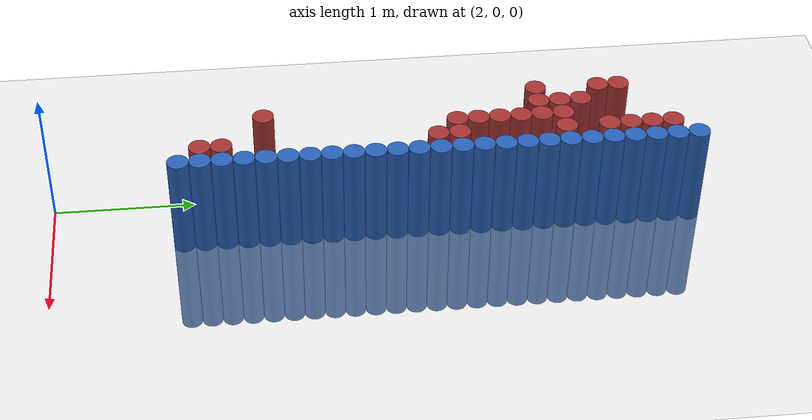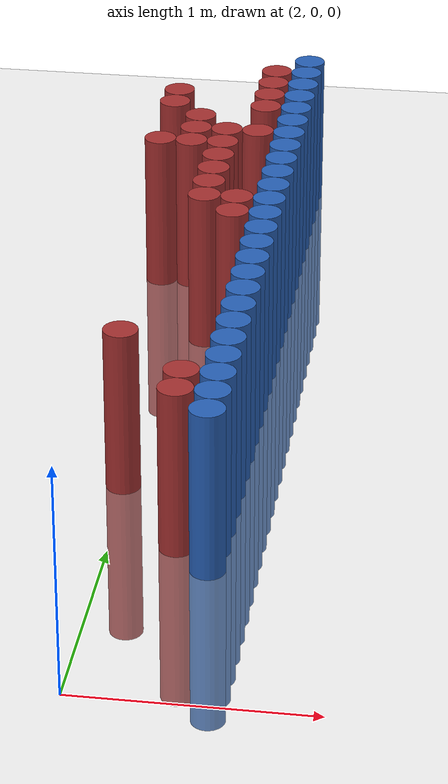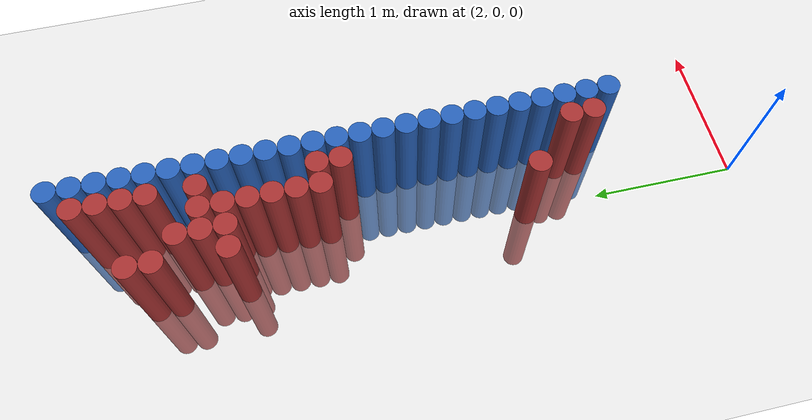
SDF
<sdf version="1.6">
 <world name="default">
  <model name="ground_plane">
   <static>1</static>
   <link name="link">
    <collision name="collision">
     <geometry><plane><normal>0 0 1</normal><size>100 100</size></plane></geometry>
     <surface><friction><ode><mu>100</mu><mu2>50</mu2></ode></friction></surface>
    </collision>
    <visual name="visual">
     <cast_shadows>0</cast_shadows>
     <geometry><plane><normal>0 0 1</normal><size>100 100</size></plane></geometry>
     <material>
      <script><uri>file://media/materials/scripts/gazebo.material</uri><name>Gazebo/Grey</name></script>
     </material>
    </visual>
   </link>
  </model>
  <model name="unit_cylinder_222">
   <static>1</static>
   <pose>1.825000 3.475000 0.000000 0.000000 0.000000 0.000000</pose>
   <link name="link">
    <inertial>
     <mass>1</mass>
     <inertia><ixx>0.145833</ixx><ixy>0</ixy><ixz>0</ixz><iyy>0.145833</iyy><iyz>0</iyz><izz>0.125</izz></inertia>
    </inertial>
    <collision name="collision">
     <geometry><cylinder><radius>0.075000</radius><length>1.5</length></cylinder></geometry>
    </collision>
    <visual name="visual">
     <geometry><cylinder><radius>0.075000</radius><length>1.5</length></cylinder></geometry>
     <material>
      <ambient>0.648000 0.192000 0.192000 1</ambient>
      <diffuse>0.648000 0.192000 0.192000 1</diffuse>
     </material>
     <material>
      <script><name>Gazebo/Grey</name><uri>file://media/materials/scripts/gazebo.material</uri></script>
     </material>
    </visual>
   </link>
  </model>
  <model name="unit_cylinder_223">
   <static>1</static>
   <pose>1.825000 3.925000 0.000000 0.000000 0.000000 0.000000</pose>
   <link name="link">
    <inertial>
     <mass>1</mass>
     <inertia><ixx>0.145833</ixx><ixy>0</ixy><ixz>0</ixz><iyy>0.145833</iyy><iyz>0</iyz><izz>0.125</izz></inertia>
    </inertial>
    <collision name="collision">
     <geometry><cylinder><radius>0.075000</radius><length>1.5</length></cylinder></geometry>
    </collision>
    <visual name="visual">
     <geometry><cylinder><radius>0.075000</radius><length>1.5</length></cylinder></geometry>
     <material>
      <ambient>0.648000 0.192000 0.192000 1</ambient>
      <diffuse>0.648000 0.192000 0.192000 1</diffuse>
     </material>
     <material>
      <script><name>Gazebo/Grey</name><uri>file://media/materials/scripts/gazebo.material</uri></script>
     </material>
    </visual>
   </link>
  </model>
  <model name="unit_cylinder_224">
   <static>1</static>
   <pose>1.825000 4.075000 0.000000 0.000000 0.000000 0.000000</pose>
   <link name="link">
    <inertial>
     <mass>1</mass>
     <inertia><ixx>0.145833</ixx><ixy>0</ixy><ixz>0</ixz><iyy>0.145833</iyy><iyz>0</iyz><izz>0.125</izz></inertia>
    </inertial>
    <collision name="collision">
     <geometry><cylinder><radius>0.075000</radius><length>1.5</length></cylinder></geometry>
    </collision>
    <visual name="visual">
     <geometry><cylinder><radius>0.075000</radius><length>1.5</length></cylinder></geometry>
     <material>
      <ambient>0.648000 0.192000 0.192000 1</ambient>
      <diffuse>0.648000 0.192000 0.192000 1</diffuse>
     </material>
     <material>
      <script><name>Gazebo/Grey</name><uri>file://media/materials/scripts/gazebo.material</uri></script>
     </material>
    </visual>
   </link>
  </model>
  <model name="unit_cylinder_225">
   <static>1</static>
   <pose>1.975000 1.525000 0.000000 0.000000 0.000000 0.000000</pose>
   <link name="link">
    <inertial>
     <mass>1</mass>
     <inertia><ixx>0.145833</ixx><ixy>0</ixy><ixz>0</ixz><iyy>0.145833</iyy><iyz>0</iyz><izz>0.125</izz></inertia>
    </inertial>
    <collision name="collision">
     <geometry><cylinder><radius>0.075000</radius><length>1.5</length></cylinder></geometry>
    </collision>
    <visual name="visual">
     <geometry><cylinder><radius>0.075000</radius><length>1.5</length></cylinder></geometry>
     <material>
      <ambient>0.648000 0.192000 0.192000 1</ambient>
      <diffuse>0.648000 0.192000 0.192000 1</diffuse>
     </material>
     <material>
      <script><name>Gazebo/Grey</name><uri>file://media/materials/scripts/gazebo.material</uri></script>
     </material>
    </visual>
   </link>
  </model>
  <model name="unit_cylinder_226">
   <static>1</static>
   <pose>1.975000 3.475000 0.000000 0.000000 0.000000 0.000000</pose>
   <link name="link">
    <inertial>
     <mass>1</mass>
     <inertia><ixx>0.145833</ixx><ixy>0</ixy><ixz>0</ixz><iyy>0.145833</iyy><iyz>0</iyz><izz>0.125</izz></inertia>
    </inertial>
    <collision name="collision">
     <geometry><cylinder><radius>0.075000</radius><length>1.5</length></cylinder></geometry>
    </collision>
    <visual name="visual">
     <geometry><cylinder><radius>0.075000</radius><length>1.5</length></cylinder></geometry>
     <material>
      <ambient>0.648000 0.192000 0.192000 1</ambient>
      <diffuse>0.648000 0.192000 0.192000 1</diffuse>
     </material>
     <material>
      <script><name>Gazebo/Grey</name><uri>file://media/materials/scripts/gazebo.material</uri></script>
     </material>
    </visual>
   </link>
  </model>
  <model name="unit_cylinder_227">
   <static>1</static>
   <pose>1.975000 3.625000 0.000000 0.000000 0.000000 0.000000</pose>
   <link name="link">
    <inertial>
     <mass>1</mass>
     <inertia><ixx>0.145833</ixx><ixy>0</ixy><ixz>0</ixz><iyy>0.145833</iyy><iyz>0</iyz><izz>0.125</izz></inertia>
    </inertial>
    <collision name="collision">
     <geometry><cylinder><radius>0.075000</radius><length>1.5</length></cylinder></geometry>
    </collision>
    <visual name="visual">
     <geometry><cylinder><radius>0.075000</radius><length>1.5</length></cylinder></geometry>
     <material>
      <ambient>0.648000 0.192000 0.192000 1</ambient>
      <diffuse>0.648000 0.192000 0.192000 1</diffuse>
     </material>
     <material>
      <script><name>Gazebo/Grey</name><uri>file://media/materials/scripts/gazebo.material</uri></script>
     </material>
    </visual>
   </link>
  </model>
  <model name="unit_cylinder_228">
   <static>1</static>
   <pose>1.975000 3.775000 0.000000 0.000000 0.000000 0.000000</pose>
   <link name="link">
    <inertial>
     <mass>1</mass>
     <inertia><ixx>0.145833</ixx><ixy>0</ixy><ixz>0</ixz><iyy>0.145833</iyy><iyz>0</iyz><izz>0.125</izz></inertia>
    </inertial>
    <collision name="collision">
     <geometry><cylinder><radius>0.075000</radius><length>1.5</length></cylinder></geometry>
    </collision>
    <visual name="visual">
     <geometry><cylinder><radius>0.075000</radius><length>1.5</length></cylinder></geometry>
     <material>
      <ambient>0.648000 0.192000 0.192000 1</ambient>
      <diffuse>0.648000 0.192000 0.192000 1</diffuse>
     </material>
     <material>
      <script><name>Gazebo/Grey</name><uri>file://media/materials/scripts/gazebo.material</uri></script>
     </material>
    </visual>
   </link>
  </model>
  <model name="unit_cylinder_230">
   <static>1</static>
   <pose>2.125000 2.875000 0.000000 0.000000 0.000000 0.000000</pose>
   <link name="link">
    <inertial>
     <mass>1</mass>
     <inertia><ixx>0.145833</ixx><ixy>0</ixy><ixz>0</ixz><iyy>0.145833</iyy><iyz>0</iyz><izz>0.125</izz></inertia>
    </inertial>
    <collision name="collision">
     <geometry><cylinder><radius>0.075000</radius><length>1.5</length></cylinder></geometry>
    </collision>
    <visual name="visual">
     <geometry><cylinder><radius>0.075000</radius><length>1.5</length></cylinder></geometry>
     <material>
      <ambient>0.648000 0.192000 0.192000 1</ambient>
      <diffuse>0.648000 0.192000 0.192000 1</diffuse>
     </material>
     <material>
      <script><name>Gazebo/Grey</name><uri>file://media/materials/scripts/gazebo.material</uri></script>
     </material>
    </visual>
   </link>
  </model>
  <model name="unit_cylinder_231">
   <static>1</static>
   <pose>2.125000 3.025000 0.000000 0.000000 0.000000 0.000000</pose>
   <link name="link">
    <inertial>
     <mass>1</mass>
     <inertia><ixx>0.145833</ixx><ixy>0</ixy><ixz>0</ixz><iyy>0.145833</iyy><iyz>0</iyz><izz>0.125</izz></inertia>
    </inertial>
    <collision name="collision">
     <geometry><cylinder><radius>0.075000</radius><length>1.5</length></cylinder></geometry>
    </collision>
    <visual name="visual">
     <geometry><cylinder><radius>0.075000</radius><length>1.5</length></cylinder></geometry>
     <material>
      <ambient>0.648000 0.192000 0.192000 1</ambient>
      <diffuse>0.648000 0.192000 0.192000 1</diffuse>
     </material>
     <material>
      <script><name>Gazebo/Grey</name><uri>file://media/materials/scripts/gazebo.material</uri></script>
     </material>
    </visual>
   </link>
  </model>
  <model name="unit_cylinder_232">
   <static>1</static>
   <pose>2.125000 3.175000 0.000000 0.000000 0.000000 0.000000</pose>
   <link name="link">
    <inertial>
     <mass>1</mass>
     <inertia><ixx>0.145833</ixx><ixy>0</ixy><ixz>0</ixz><iyy>0.145833</iyy><iyz>0</iyz><izz>0.125</izz></inertia>
    </inertial>
    <collision name="collision">
     <geometry><cylinder><radius>0.075000</radius><length>1.5</length></cylinder></geometry>
    </collision>
    <visual name="visual">
     <geometry><cylinder><radius>0.075000</radius><length>1.5</length></cylinder></geometry>
     <material>
      <ambient>0.648000 0.192000 0.192000 1</ambient>
      <diffuse>0.648000 0.192000 0.192000 1</diffuse>
     </material>
     <material>
      <script><name>Gazebo/Grey</name><uri>file://media/materials/scripts/gazebo.material</uri></script>
     </material>
    </visual>
   </link>
  </model>
  <model name="unit_cylinder_233">
   <static>1</static>
   <pose>2.125000 3.325000 0.000000 0.000000 0.000000 0.000000</pose>
   <link name="link">
    <inertial>
     <mass>1</mass>
     <inertia><ixx>0.145833</ixx><ixy>0</ixy><ixz>0</ixz><iyy>0.145833</iyy><iyz>0</iyz><izz>0.125</izz></inertia>
    </inertial>
    <collision name="collision">
     <geometry><cylinder><radius>0.075000</radius><length>1.5</length></cylinder></geometry>
    </collision>
    <visual name="visual">
     <geometry><cylinder><radius>0.075000</radius><length>1.5</length></cylinder></geometry>
     <material>
      <ambient>0.648000 0.192000 0.192000 1</ambient>
      <diffuse>0.648000 0.192000 0.192000 1</diffuse>
     </material>
     <material>
      <script><name>Gazebo/Grey</name><uri>file://media/materials/scripts/gazebo.material</uri></script>
     </material>
    </visual>
   </link>
  </model>
  <model name="unit_cylinder_234">
   <static>1</static>
   <pose>2.125000 3.475000 0.000000 0.000000 0.000000 0.000000</pose>
   <link name="link">
    <inertial>
     <mass>1</mass>
     <inertia><ixx>0.145833</ixx><ixy>0</ixy><ixz>0</ixz><iyy>0.145833</iyy><iyz>0</iyz><izz>0.125</izz></inertia>
    </inertial>
    <collision name="collision">
     <geometry><cylinder><radius>0.075000</radius><length>1.5</length></cylinder></geometry>
    </collision>
    <visual name="visual">
     <geometry><cylinder><radius>0.075000</radius><length>1.5</length></cylinder></geometry>
     <material>
      <ambient>0.648000 0.192000 0.192000 1</ambient>
      <diffuse>0.648000 0.192000 0.192000 1</diffuse>
     </material>
     <material>
      <script><name>Gazebo/Grey</name><uri>file://media/materials/scripts/gazebo.material</uri></script>
     </material>
    </visual>
   </link>
  </model>
  <model name="unit_cylinder_235">
   <static>1</static>
   <pose>2.125000 3.625000 0.000000 0.000000 0.000000 0.000000</pose>
   <link name="link">
    <inertial>
     <mass>1</mass>
     <inertia><ixx>0.145833</ixx><ixy>0</ixy><ixz>0</ixz><iyy>0.145833</iyy><iyz>0</iyz><izz>0.125</izz></inertia>
    </inertial>
    <collision name="collision">
     <geometry><cylinder><radius>0.075000</radius><length>1.5</length></cylinder></geometry>
    </collision>
    <visual name="visual">
     <geometry><cylinder><radius>0.075000</radius><length>1.5</length></cylinder></geometry>
     <material>
      <ambient>0.648000 0.192000 0.192000 1</ambient>
      <diffuse>0.648000 0.192000 0.192000 1</diffuse>
     </material>
     <material>
      <script><name>Gazebo/Grey</name><uri>file://media/materials/scripts/gazebo.material</uri></script>
     </material>
    </visual>
   </link>
  </model>
  <model name="unit_cylinder_242">
   <static>1</static>
   <pose>2.275000 1.075000 0.000000 0.000000 0.000000 0.000000</pose>
   <link name="link">
    <inertial>
     <mass>1</mass>
     <inertia><ixx>0.145833</ixx><ixy>0</ixy><ixz>0</ixz><iyy>0.145833</iyy><iyz>0</iyz><izz>0.125</izz></inertia>
    </inertial>
    <collision name="collision">
     <geometry><cylinder><radius>0.075000</radius><length>1.5</length></cylinder></geometry>
    </collision>
    <visual name="visual">
     <geometry><cylinder><radius>0.075000</radius><length>1.5</length></cylinder></geometry>
     <material>
      <ambient>0.648000 0.192000 0.192000 1</ambient>
      <diffuse>0.648000 0.192000 0.192000 1</diffuse>
     </material>
     <material>
      <script><name>Gazebo/Grey</name><uri>file://media/materials/scripts/gazebo.material</uri></script>
     </material>
    </visual>
   </link>
  </model>
  <model name="unit_cylinder_243">
   <static>1</static>
   <pose>2.275000 1.225000 0.000000 0.000000 0.000000 0.000000</pose>
   <link name="link">
    <inertial>
     <mass>1</mass>
     <inertia><ixx>0.145833</ixx><ixy>0</ixy><ixz>0</ixz><iyy>0.145833</iyy><iyz>0</iyz><izz>0.125</izz></inertia>
    </inertial>
    <collision name="collision">
     <geometry><cylinder><radius>0.075000</radius><length>1.5</length></cylinder></geometry>
    </collision>
    <visual name="visual">
     <geometry><cylinder><radius>0.075000</radius><length>1.5</length></cylinder></geometry>
     <material>
      <ambient>0.648000 0.192000 0.192000 1</ambient>
      <diffuse>0.648000 0.192000 0.192000 1</diffuse>
     </material>
     <material>
      <script><name>Gazebo/Grey</name><uri>file://media/materials/scripts/gazebo.material</uri></script>
     </material>
    </visual>
   </link>
  </model>
  <model name="unit_cylinder_244">
   <static>1</static>
   <pose>2.275000 2.725000 0.000000 0.000000 0.000000 0.000000</pose>
   <link name="link">
    <inertial>
     <mass>1</mass>
     <inertia><ixx>0.145833</ixx><ixy>0</ixy><ixz>0</ixz><iyy>0.145833</iyy><iyz>0</iyz><izz>0.125</izz></inertia>
    </inertial>
    <collision name="collision">
     <geometry><cylinder><radius>0.075000</radius><length>1.5</length></cylinder></geometry>
    </collision>
    <visual name="visual">
     <geometry><cylinder><radius>0.075000</radius><length>1.5</length></cylinder></geometry>
     <material>
      <ambient>0.648000 0.192000 0.192000 1</ambient>
      <diffuse>0.648000 0.192000 0.192000 1</diffuse>
     </material>
     <material>
      <script><name>Gazebo/Grey</name><uri>file://media/materials/scripts/gazebo.material</uri></script>
     </material>
    </visual>
   </link>
  </model>
  <model name="unit_cylinder_245">
   <static>1</static>
   <pose>2.275000 2.875000 0.000000 0.000000 0.000000 0.000000</pose>
   <link name="link">
    <inertial>
     <mass>1</mass>
     <inertia><ixx>0.145833</ixx><ixy>0</ixy><ixz>0</ixz><iyy>0.145833</iyy><iyz>0</iyz><izz>0.125</izz></inertia>
    </inertial>
    <collision name="collision">
     <geometry><cylinder><radius>0.075000</radius><length>1.5</length></cylinder></geometry>
    </collision>
    <visual name="visual">
     <geometry><cylinder><radius>0.075000</radius><length>1.5</length></cylinder></geometry>
     <material>
      <ambient>0.648000 0.192000 0.192000 1</ambient>
      <diffuse>0.648000 0.192000 0.192000 1</diffuse>
     </material>
     <material>
      <script><name>Gazebo/Grey</name><uri>file://media/materials/scripts/gazebo.material</uri></script>
     </material>
    </visual>
   </link>
  </model>
  <model name="unit_cylinder_246">
   <static>1</static>
   <pose>2.275000 3.625000 0.000000 0.000000 0.000000 0.000000</pose>
   <link name="link">
    <inertial>
     <mass>1</mass>
     <inertia><ixx>0.145833</ixx><ixy>0</ixy><ixz>0</ixz><iyy>0.145833</iyy><iyz>0</iyz><izz>0.125</izz></inertia>
    </inertial>
    <collision name="collision">
     <geometry><cylinder><radius>0.075000</radius><length>1.5</length></cylinder></geometry>
    </collision>
    <visual name="visual">
     <geometry><cylinder><radius>0.075000</radius><length>1.5</length></cylinder></geometry>
     <material>
      <ambient>0.648000 0.192000 0.192000 1</ambient>
      <diffuse>0.648000 0.192000 0.192000 1</diffuse>
     </material>
     <material>
      <script><name>Gazebo/Grey</name><uri>file://media/materials/scripts/gazebo.material</uri></script>
     </material>
    </visual>
   </link>
  </model>
  <model name="unit_cylinder_247">
   <static>1</static>
   <pose>2.275000 3.925000 0.000000 0.000000 0.000000 0.000000</pose>
   <link name="link">
    <inertial>
     <mass>1</mass>
     <inertia><ixx>0.145833</ixx><ixy>0</ixy><ixz>0</ixz><iyy>0.145833</iyy><iyz>0</iyz><izz>0.125</izz></inertia>
    </inertial>
    <collision name="collision">
     <geometry><cylinder><radius>0.075000</radius><length>1.5</length></cylinder></geometry>
    </collision>
    <visual name="visual">
     <geometry><cylinder><radius>0.075000</radius><length>1.5</length></cylinder></geometry>
     <material>
      <ambient>0.648000 0.192000 0.192000 1</ambient>
      <diffuse>0.648000 0.192000 0.192000 1</diffuse>
     </material>
     <material>
      <script><name>Gazebo/Grey</name><uri>file://media/materials/scripts/gazebo.material</uri></script>
     </material>
    </visual>
   </link>
  </model>
  <model name="unit_cylinder_248">
   <static>1</static>
   <pose>2.275000 4.075000 0.000000 0.000000 0.000000 0.000000</pose>
   <link name="link">
    <inertial>
     <mass>1</mass>
     <inertia><ixx>0.145833</ixx><ixy>0</ixy><ixz>0</ixz><iyy>0.145833</iyy><iyz>0</iyz><izz>0.125</izz></inertia>
    </inertial>
    <collision name="collision">
     <geometry><cylinder><radius>0.075000</radius><length>1.5</length></cylinder></geometry>
    </collision>
    <visual name="visual">
     <geometry><cylinder><radius>0.075000</radius><length>1.5</length></cylinder></geometry>
     <material>
      <ambient>0.648000 0.192000 0.192000 1</ambient>
      <diffuse>0.648000 0.192000 0.192000 1</diffuse>
     </material>
     <material>
      <script><name>Gazebo/Grey</name><uri>file://media/materials/scripts/gazebo.material</uri></script>
     </material>
    </visual>
   </link>
  </model>
  <model name="unit_cylinder_249">
   <static>1</static>
   <pose>2.275000 4.225000 0.000000 0.000000 0.000000 0.000000</pose>
   <link name="link">
    <inertial>
     <mass>1</mass>
     <inertia><ixx>0.145833</ixx><ixy>0</ixy><ixz>0</ixz><iyy>0.145833</iyy><iyz>0</iyz><izz>0.125</izz></inertia>
    </inertial>
    <collision name="collision">
     <geometry><cylinder><radius>0.075000</radius><length>1.5</length></cylinder></geometry>
    </collision>
    <visual name="visual">
     <geometry><cylinder><radius>0.075000</radius><length>1.5</length></cylinder></geometry>
     <material>
      <ambient>0.648000 0.192000 0.192000 1</ambient>
      <diffuse>0.648000 0.192000 0.192000 1</diffuse>
     </material>
     <material>
      <script><name>Gazebo/Grey</name><uri>file://media/materials/scripts/gazebo.material</uri></script>
     </material>
    </visual>
   </link>
  </model>
  <model name="unit_cylinder_250">
   <static>1</static>
   <pose>2.275000 4.375000 0.000000 0.000000 0.000000 0.000000</pose>
   <link name="link">
    <inertial>
     <mass>1</mass>
     <inertia><ixx>0.145833</ixx><ixy>0</ixy><ixz>0</ixz><iyy>0.145833</iyy><iyz>0</iyz><izz>0.125</izz></inertia>
    </inertial>
    <collision name="collision">
     <geometry><cylinder><radius>0.075000</radius><length>1.5</length></cylinder></geometry>
    </collision>
    <visual name="visual">
     <geometry><cylinder><radius>0.075000</radius><length>1.5</length></cylinder></geometry>
     <material>
      <ambient>0.648000 0.192000 0.192000 1</ambient>
      <diffuse>0.648000 0.192000 0.192000 1</diffuse>
     </material>
     <material>
      <script><name>Gazebo/Grey</name><uri>file://media/materials/scripts/gazebo.material</uri></script>
     </material>
    </visual>
   </link>
  </model>
  <model name="unit_cylinder_256">
   <static>1</static>
   <pose>2.425000 0.925000 0.000000 0.000000 0.000000 0.000000</pose>
   <link name="link">
    <inertial>
     <mass>1</mass>
     <inertia><ixx>0.145833</ixx><ixy>0</ixy><ixz>0</ixz><iyy>0.145833</iyy><iyz>0</iyz><izz>0.125</izz></inertia>
    </inertial>
    <collision name="collision">
     <geometry><cylinder><radius>0.075000</radius><length>1.5</length></cylinder></geometry>
    </collision>
    <visual name="visual">
     <geometry><cylinder><radius>0.075000</radius><length>1.5</length></cylinder></geometry>
     <material>
      <ambient>0.152000 0.379000 0.720000 1</ambient>
      <diffuse>0.152000 0.379000 0.720000 1</diffuse>
     </material>
     <material>
      <script><name>Gazebo/Grey</name><uri>file://media/materials/scripts/gazebo.material</uri></script>
     </material>
    </visual>
   </link>
  </model>
  <model name="unit_cylinder_257">
   <static>1</static>
   <pose>2.425000 1.075000 0.000000 0.000000 0.000000 0.000000</pose>
   <link name="link">
    <inertial>
     <mass>1</mass>
     <inertia><ixx>0.145833</ixx><ixy>0</ixy><ixz>0</ixz><iyy>0.145833</iyy><iyz>0</iyz><izz>0.125</izz></inertia>
    </inertial>
    <collision name="collision">
     <geometry><cylinder><radius>0.075000</radius><length>1.5</length></cylinder></geometry>
    </collision>
    <visual name="visual">
     <geometry><cylinder><radius>0.075000</radius><length>1.5</length></cylinder></geometry>
     <material>
      <ambient>0.152000 0.379000 0.720000 1</ambient>
      <diffuse>0.152000 0.379000 0.720000 1</diffuse>
     </material>
     <material>
      <script><name>Gazebo/Grey</name><uri>file://media/materials/scripts/gazebo.material</uri></script>
     </material>
    </visual>
   </link>
  </model>
  <model name="unit_cylinder_258">
   <static>1</static>
   <pose>2.425000 1.225000 0.000000 0.000000 0.000000 0.000000</pose>
   <link name="link">
    <inertial>
     <mass>1</mass>
     <inertia><ixx>0.145833</ixx><ixy>0</ixy><ixz>0</ixz><iyy>0.145833</iyy><iyz>0</iyz><izz>0.125</izz></inertia>
    </inertial>
    <collision name="collision">
     <geometry><cylinder><radius>0.075000</radius><length>1.5</length></cylinder></geometry>
    </collision>
    <visual name="visual">
     <geometry><cylinder><radius>0.075000</radius><length>1.5</length></cylinder></geometry>
     <material>
      <ambient>0.152000 0.379000 0.720000 1</ambient>
      <diffuse>0.152000 0.379000 0.720000 1</diffuse>
     </material>
     <material>
      <script><name>Gazebo/Grey</name><uri>file://media/materials/scripts/gazebo.material</uri></script>
     </material>
    </visual>
   </link>
  </model>
  <model name="unit_cylinder_259">
   <static>1</static>
   <pose>2.425000 1.375000 0.000000 0.000000 0.000000 0.000000</pose>
   <link name="link">
    <inertial>
     <mass>1</mass>
     <inertia><ixx>0.145833</ixx><ixy>0</ixy><ixz>0</ixz><iyy>0.145833</iyy><iyz>0</iyz><izz>0.125</izz></inertia>
    </inertial>
    <collision name="collision">
     <geometry><cylinder><radius>0.075000</radius><length>1.5</length></cylinder></geometry>
    </collision>
    <visual name="visual">
     <geometry><cylinder><radius>0.075000</radius><length>1.5</length></cylinder></geometry>
     <material>
      <ambient>0.152000 0.379000 0.720000 1</ambient>
      <diffuse>0.152000 0.379000 0.720000 1</diffuse>
     </material>
     <material>
      <script><name>Gazebo/Grey</name><uri>file://media/materials/scripts/gazebo.material</uri></script>
     </material>
    </visual>
   </link>
  </model>
  <model name="unit_cylinder_260">
   <static>1</static>
   <pose>2.425000 1.525000 0.000000 0.000000 0.000000 0.000000</pose>
   <link name="link">
    <inertial>
     <mass>1</mass>
     <inertia><ixx>0.145833</ixx><ixy>0</ixy><ixz>0</ixz><iyy>0.145833</iyy><iyz>0</iyz><izz>0.125</izz></inertia>
    </inertial>
    <collision name="collision">
     <geometry><cylinder><radius>0.075000</radius><length>1.5</length></cylinder></geometry>
    </collision>
    <visual name="visual">
     <geometry><cylinder><radius>0.075000</radius><length>1.5</length></cylinder></geometry>
     <material>
      <ambient>0.152000 0.379000 0.720000 1</ambient>
      <diffuse>0.152000 0.379000 0.720000 1</diffuse>
     </material>
     <material>
      <script><name>Gazebo/Grey</name><uri>file://media/materials/scripts/gazebo.material</uri></script>
     </material>
    </visual>
   </link>
  </model>
  <model name="unit_cylinder_261">
   <static>1</static>
   <pose>2.425000 1.675000 0.000000 0.000000 0.000000 0.000000</pose>
   <link name="link">
    <inertial>
     <mass>1</mass>
     <inertia><ixx>0.145833</ixx><ixy>0</ixy><ixz>0</ixz><iyy>0.145833</iyy><iyz>0</iyz><izz>0.125</izz></inertia>
    </inertial>
    <collision name="collision">
     <geometry><cylinder><radius>0.075000</radius><length>1.5</length></cylinder></geometry>
    </collision>
    <visual name="visual">
     <geometry><cylinder><radius>0.075000</radius><length>1.5</length></cylinder></geometry>
     <material>
      <ambient>0.152000 0.379000 0.720000 1</ambient>
      <diffuse>0.152000 0.379000 0.720000 1</diffuse>
     </material>
     <material>
      <script><name>Gazebo/Grey</name><uri>file://media/materials/scripts/gazebo.material</uri></script>
     </material>
    </visual>
   </link>
  </model>
  <model name="unit_cylinder_262">
   <static>1</static>
   <pose>2.425000 1.825000 0.000000 0.000000 0.000000 0.000000</pose>
   <link name="link">
    <inertial>
     <mass>1</mass>
     <inertia><ixx>0.145833</ixx><ixy>0</ixy><ixz>0</ixz><iyy>0.145833</iyy><iyz>0</iyz><izz>0.125</izz></inertia>
    </inertial>
    <collision name="collision">
     <geometry><cylinder><radius>0.075000</radius><length>1.5</length></cylinder></geometry>
    </collision>
    <visual name="visual">
     <geometry><cylinder><radius>0.075000</radius><length>1.5</length></cylinder></geometry>
     <material>
      <ambient>0.152000 0.379000 0.720000 1</ambient>
      <diffuse>0.152000 0.379000 0.720000 1</diffuse>
     </material>
     <material>
      <script><name>Gazebo/Grey</name><uri>file://media/materials/scripts/gazebo.material</uri></script>
     </material>
    </visual>
   </link>
  </model>
  <model name="unit_cylinder_263">
   <static>1</static>
   <pose>2.425000 1.975000 0.000000 0.000000 0.000000 0.000000</pose>
   <link name="link">
    <inertial>
     <mass>1</mass>
     <inertia><ixx>0.145833</ixx><ixy>0</ixy><ixz>0</ixz><iyy>0.145833</iyy><iyz>0</iyz><izz>0.125</izz></inertia>
    </inertial>
    <collision name="collision">
     <geometry><cylinder><radius>0.075000</radius><length>1.5</length></cylinder></geometry>
    </collision>
    <visual name="visual">
     <geometry><cylinder><radius>0.075000</radius><length>1.5</length></cylinder></geometry>
     <material>
      <ambient>0.152000 0.379000 0.720000 1</ambient>
      <diffuse>0.152000 0.379000 0.720000 1</diffuse>
     </material>
     <material>
      <script><name>Gazebo/Grey</name><uri>file://media/materials/scripts/gazebo.material</uri></script>
     </material>
    </visual>
   </link>
  </model>
  <model name="unit_cylinder_264">
   <static>1</static>
   <pose>2.425000 2.125000 0.000000 0.000000 0.000000 0.000000</pose>
   <link name="link">
    <inertial>
     <mass>1</mass>
     <inertia><ixx>0.145833</ixx><ixy>0</ixy><ixz>0</ixz><iyy>0.145833</iyy><iyz>0</iyz><izz>0.125</izz></inertia>
    </inertial>
    <collision name="collision">
     <geometry><cylinder><radius>0.075000</radius><length>1.5</length></cylinder></geometry>
    </collision>
    <visual name="visual">
     <geometry><cylinder><radius>0.075000</radius><length>1.5</length></cylinder></geometry>
     <material>
      <ambient>0.152000 0.379000 0.720000 1</ambient>
      <diffuse>0.152000 0.379000 0.720000 1</diffuse>
     </material>
     <material>
      <script><name>Gazebo/Grey</name><uri>file://media/materials/scripts/gazebo.material</uri></script>
     </material>
    </visual>
   </link>
  </model>
  <model name="unit_cylinder_265">
   <static>1</static>
   <pose>2.425000 2.275000 0.000000 0.000000 0.000000 0.000000</pose>
   <link name="link">
    <inertial>
     <mass>1</mass>
     <inertia><ixx>0.145833</ixx><ixy>0</ixy><ixz>0</ixz><iyy>0.145833</iyy><iyz>0</iyz><izz>0.125</izz></inertia>
    </inertial>
    <collision name="collision">
     <geometry><cylinder><radius>0.075000</radius><length>1.5</length></cylinder></geometry>
    </collision>
    <visual name="visual">
     <geometry><cylinder><radius>0.075000</radius><length>1.5</length></cylinder></geometry>
     <material>
      <ambient>0.152000 0.379000 0.720000 1</ambient>
      <diffuse>0.152000 0.379000 0.720000 1</diffuse>
     </material>
     <material>
      <script><name>Gazebo/Grey</name><uri>file://media/materials/scripts/gazebo.material</uri></script>
     </material>
    </visual>
   </link>
  </model>
  <model name="unit_cylinder_266">
   <static>1</static>
   <pose>2.425000 2.425000 0.000000 0.000000 0.000000 0.000000</pose>
   <link name="link">
    <inertial>
     <mass>1</mass>
     <inertia><ixx>0.145833</ixx><ixy>0</ixy><ixz>0</ixz><iyy>0.145833</iyy><iyz>0</iyz><izz>0.125</izz></inertia>
    </inertial>
    <collision name="collision">
     <geometry><cylinder><radius>0.075000</radius><length>1.5</length></cylinder></geometry>
    </collision>
    <visual name="visual">
     <geometry><cylinder><radius>0.075000</radius><length>1.5</length></cylinder></geometry>
     <material>
      <ambient>0.152000 0.379000 0.720000 1</ambient>
      <diffuse>0.152000 0.379000 0.720000 1</diffuse>
     </material>
     <material>
      <script><name>Gazebo/Grey</name><uri>file://media/materials/scripts/gazebo.material</uri></script>
     </material>
    </visual>
   </link>
  </model>
  <model name="unit_cylinder_267">
   <static>1</static>
   <pose>2.425000 2.575000 0.000000 0.000000 0.000000 0.000000</pose>
   <link name="link">
    <inertial>
     <mass>1</mass>
     <inertia><ixx>0.145833</ixx><ixy>0</ixy><ixz>0</ixz><iyy>0.145833</iyy><iyz>0</iyz><izz>0.125</izz></inertia>
    </inertial>
    <collision name="collision">
     <geometry><cylinder><radius>0.075000</radius><length>1.5</length></cylinder></geometry>
    </collision>
    <visual name="visual">
     <geometry><cylinder><radius>0.075000</radius><length>1.5</length></cylinder></geometry>
     <material>
      <ambient>0.152000 0.379000 0.720000 1</ambient>
      <diffuse>0.152000 0.379000 0.720000 1</diffuse>
     </material>
     <material>
      <script><name>Gazebo/Grey</name><uri>file://media/materials/scripts/gazebo.material</uri></script>
     </material>
    </visual>
   </link>
  </model>
  <model name="unit_cylinder_268">
   <static>1</static>
   <pose>2.425000 2.725000 0.000000 0.000000 0.000000 0.000000</pose>
   <link name="link">
    <inertial>
     <mass>1</mass>
     <inertia><ixx>0.145833</ixx><ixy>0</ixy><ixz>0</ixz><iyy>0.145833</iyy><iyz>0</iyz><izz>0.125</izz></inertia>
    </inertial>
    <collision name="collision">
     <geometry><cylinder><radius>0.075000</radius><length>1.5</length></cylinder></geometry>
    </collision>
    <visual name="visual">
     <geometry><cylinder><radius>0.075000</radius><length>1.5</length></cylinder></geometry>
     <material>
      <ambient>0.152000 0.379000 0.720000 1</ambient>
      <diffuse>0.152000 0.379000 0.720000 1</diffuse>
     </material>
     <material>
      <script><name>Gazebo/Grey</name><uri>file://media/materials/scripts/gazebo.material</uri></script>
     </material>
    </visual>
   </link>
  </model>
  <model name="unit_cylinder_269">
   <static>1</static>
   <pose>2.425000 2.875000 0.000000 0.000000 0.000000 0.000000</pose>
   <link name="link">
    <inertial>
     <mass>1</mass>
     <inertia><ixx>0.145833</ixx><ixy>0</ixy><ixz>0</ixz><iyy>0.145833</iyy><iyz>0</iyz><izz>0.125</izz></inertia>
    </inertial>
    <collision name="collision">
     <geometry><cylinder><radius>0.075000</radius><length>1.5</length></cylinder></geometry>
    </collision>
    <visual name="visual">
     <geometry><cylinder><radius>0.075000</radius><length>1.5</length></cylinder></geometry>
     <material>
      <ambient>0.152000 0.379000 0.720000 1</ambient>
      <diffuse>0.152000 0.379000 0.720000 1</diffuse>
     </material>
     <material>
      <script><name>Gazebo/Grey</name><uri>file://media/materials/scripts/gazebo.material</uri></script>
     </material>
    </visual>
   </link>
  </model>
  <model name="unit_cylinder_270">
   <static>1</static>
   <pose>2.425000 3.025000 0.000000 0.000000 0.000000 0.000000</pose>
   <link name="link">
    <inertial>
     <mass>1</mass>
     <inertia><ixx>0.145833</ixx><ixy>0</ixy><ixz>0</ixz><iyy>0.145833</iyy><iyz>0</iyz><izz>0.125</izz></inertia>
    </inertial>
    <collision name="collision">
     <geometry><cylinder><radius>0.075000</radius><length>1.5</length></cylinder></geometry>
    </collision>
    <visual name="visual">
     <geometry><cylinder><radius>0.075000</radius><length>1.5</length></cylinder></geometry>
     <material>
      <ambient>0.152000 0.379000 0.720000 1</ambient>
      <diffuse>0.152000 0.379000 0.720000 1</diffuse>
     </material>
     <material>
      <script><name>Gazebo/Grey</name><uri>file://media/materials/scripts/gazebo.material</uri></script>
     </material>
    </visual>
   </link>
  </model>
  <model name="unit_cylinder_271">
   <static>1</static>
   <pose>2.425000 3.175000 0.000000 0.000000 0.000000 0.000000</pose>
   <link name="link">
    <inertial>
     <mass>1</mass>
     <inertia><ixx>0.145833</ixx><ixy>0</ixy><ixz>0</ixz><iyy>0.145833</iyy><iyz>0</iyz><izz>0.125</izz></inertia>
    </inertial>
    <collision name="collision">
     <geometry><cylinder><radius>0.075000</radius><length>1.5</length></cylinder></geometry>
    </collision>
    <visual name="visual">
     <geometry><cylinder><radius>0.075000</radius><length>1.5</length></cylinder></geometry>
     <material>
      <ambient>0.152000 0.379000 0.720000 1</ambient>
      <diffuse>0.152000 0.379000 0.720000 1</diffuse>
     </material>
     <material>
      <script><name>Gazebo/Grey</name><uri>file://media/materials/scripts/gazebo.material</uri></script>
     </material>
    </visual>
   </link>
  </model>
  <model name="unit_cylinder_272">
   <static>1</static>
   <pose>2.425000 3.325000 0.000000 0.000000 0.000000 0.000000</pose>
   <link name="link">
    <inertial>
     <mass>1</mass>
     <inertia><ixx>0.145833</ixx><ixy>0</ixy><ixz>0</ixz><iyy>0.145833</iyy><iyz>0</iyz><izz>0.125</izz></inertia>
    </inertial>
    <collision name="collision">
     <geometry><cylinder><radius>0.075000</radius><length>1.5</length></cylinder></geometry>
    </collision>
    <visual name="visual">
     <geometry><cylinder><radius>0.075000</radius><length>1.5</length></cylinder></geometry>
     <material>
      <ambient>0.152000 0.379000 0.720000 1</ambient>
      <diffuse>0.152000 0.379000 0.720000 1</diffuse>
     </material>
     <material>
      <script><name>Gazebo/Grey</name><uri>file://media/materials/scripts/gazebo.material</uri></script>
     </material>
    </visual>
   </link>
  </model>
  <model name="unit_cylinder_273">
   <static>1</static>
   <pose>2.425000 3.475000 0.000000 0.000000 0.000000 0.000000</pose>
   <link name="link">
    <inertial>
     <mass>1</mass>
     <inertia><ixx>0.145833</ixx><ixy>0</ixy><ixz>0</ixz><iyy>0.145833</iyy><iyz>0</iyz><izz>0.125</izz></inertia>
    </inertial>
    <collision name="collision">
     <geometry><cylinder><radius>0.075000</radius><length>1.5</length></cylinder></geometry>
    </collision>
    <visual name="visual">
     <geometry><cylinder><radius>0.075000</radius><length>1.5</length></cylinder></geometry>
     <material>
      <ambient>0.152000 0.379000 0.720000 1</ambient>
      <diffuse>0.152000 0.379000 0.720000 1</diffuse>
     </material>
     <material>
      <script><name>Gazebo/Grey</name><uri>file://media/materials/scripts/gazebo.material</uri></script>
     </material>
    </visual>
   </link>
  </model>
  <model name="unit_cylinder_274">
   <static>1</static>
   <pose>2.425000 3.625000 0.000000 0.000000 0.000000 0.000000</pose>
   <link name="link">
    <inertial>
     <mass>1</mass>
     <inertia><ixx>0.145833</ixx><ixy>0</ixy><ixz>0</ixz><iyy>0.145833</iyy><iyz>0</iyz><izz>0.125</izz></inertia>
    </inertial>
    <collision name="collision">
     <geometry><cylinder><radius>0.075000</radius><length>1.5</length></cylinder></geometry>
    </collision>
    <visual name="visual">
     <geometry><cylinder><radius>0.075000</radius><length>1.5</length></cylinder></geometry>
     <material>
      <ambient>0.152000 0.379000 0.720000 1</ambient>
      <diffuse>0.152000 0.379000 0.720000 1</diffuse>
     </material>
     <material>
      <script><name>Gazebo/Grey</name><uri>file://media/materials/scripts/gazebo.material</uri></script>
     </material>
    </visual>
   </link>
  </model>
  <model name="unit_cylinder_275">
   <static>1</static>
   <pose>2.425000 3.775000 0.000000 0.000000 0.000000 0.000000</pose>
   <link name="link">
    <inertial>
     <mass>1</mass>
     <inertia><ixx>0.145833</ixx><ixy>0</ixy><ixz>0</ixz><iyy>0.145833</iyy><iyz>0</iyz><izz>0.125</izz></inertia>
    </inertial>
    <collision name="collision">
     <geometry><cylinder><radius>0.075000</radius><length>1.5</length></cylinder></geometry>
    </collision>
    <visual name="visual">
     <geometry><cylinder><radius>0.075000</radius><length>1.5</length></cylinder></geometry>
     <material>
      <ambient>0.152000 0.379000 0.720000 1</ambient>
      <diffuse>0.152000 0.379000 0.720000 1</diffuse>
     </material>
     <material>
      <script><name>Gazebo/Grey</name><uri>file://media/materials/scripts/gazebo.material</uri></script>
     </material>
    </visual>
   </link>
  </model>
  <model name="unit_cylinder_276">
   <static>1</static>
   <pose>2.425000 3.925000 0.000000 0.000000 0.000000 0.000000</pose>
   <link name="link">
    <inertial>
     <mass>1</mass>
     <inertia><ixx>0.145833</ixx><ixy>0</ixy><ixz>0</ixz><iyy>0.145833</iyy><iyz>0</iyz><izz>0.125</izz></inertia>
    </inertial>
    <collision name="collision">
     <geometry><cylinder><radius>0.075000</radius><length>1.5</length></cylinder></geometry>
    </collision>
    <visual name="visual">
     <geometry><cylinder><radius>0.075000</radius><length>1.5</length></cylinder></geometry>
     <material>
      <ambient>0.152000 0.379000 0.720000 1</ambient>
      <diffuse>0.152000 0.379000 0.720000 1</diffuse>
     </material>
     <material>
      <script><name>Gazebo/Grey</name><uri>file://media/materials/scripts/gazebo.material</uri></script>
     </material>
    </visual>
   </link>
  </model>
  <model name="unit_cylinder_277">
   <static>1</static>
   <pose>2.425000 4.075000 0.000000 0.000000 0.000000 0.000000</pose>
   <link name="link">
    <inertial>
     <mass>1</mass>
     <inertia><ixx>0.145833</ixx><ixy>0</ixy><ixz>0</ixz><iyy>0.145833</iyy><iyz>0</iyz><izz>0.125</izz></inertia>
    </inertial>
    <collision name="collision">
     <geometry><cylinder><radius>0.075000</radius><length>1.5</length></cylinder></geometry>
    </collision>
    <visual name="visual">
     <geometry><cylinder><radius>0.075000</radius><length>1.5</length></cylinder></geometry>
     <material>
      <ambient>0.152000 0.379000 0.720000 1</ambient>
      <diffuse>0.152000 0.379000 0.720000 1</diffuse>
     </material>
     <material>
      <script><name>Gazebo/Grey</name><uri>file://media/materials/scripts/gazebo.material</uri></script>
     </material>
    </visual>
   </link>
  </model>
  <model name="unit_cylinder_278">
   <static>1</static>
   <pose>2.425000 4.225000 0.000000 0.000000 0.000000 0.000000</pose>
   <link name="link">
    <inertial>
     <mass>1</mass>
     <inertia><ixx>0.145833</ixx><ixy>0</ixy><ixz>0</ixz><iyy>0.145833</iyy><iyz>0</iyz><izz>0.125</izz></inertia>
    </inertial>
    <collision name="collision">
     <geometry><cylinder><radius>0.075000</radius><length>1.5</length></cylinder></geometry>
    </collision>
    <visual name="visual">
     <geometry><cylinder><radius>0.075000</radius><length>1.5</length></cylinder></geometry>
     <material>
      <ambient>0.152000 0.379000 0.720000 1</ambient>
      <diffuse>0.152000 0.379000 0.720000 1</diffuse>
     </material>
     <material>
      <script><name>Gazebo/Grey</name><uri>file://media/materials/scripts/gazebo.material</uri></script>
     </material>
    </visual>
   </link>
  </model>
  <model name="unit_cylinder_279">
   <static>1</static>
   <pose>2.425000 4.375000 0.000000 0.000000 0.000000 0.000000</pose>
   <link name="link">
    <inertial>
     <mass>1</mass>
     <inertia><ixx>0.145833</ixx><ixy>0</ixy><ixz>0</ixz><iyy>0.145833</iyy><iyz>0</iyz><izz>0.125</izz></inertia>
    </inertial>
    <collision name="collision">
     <geometry><cylinder><radius>0.075000</radius><length>1.5</length></cylinder></geometry>
    </collision>
    <visual name="visual">
     <geometry><cylinder><radius>0.075000</radius><length>1.5</length></cylinder></geometry>
     <material>
      <ambient>0.152000 0.379000 0.720000 1</ambient>
      <diffuse>0.152000 0.379000 0.720000 1</diffuse>
     </material>
     <material>
      <script><name>Gazebo/Grey</name><uri>file://media/materials/scripts/gazebo.material</uri></script>
     </material>
    </visual>
   </link>
  </model>
  <model name="unit_cylinder_280">
   <static>1</static>
   <pose>2.425000 4.525000 0.000000 0.000000 0.000000 0.000000</pose>
   <link name="link">
    <inertial>
     <mass>1</mass>
     <inertia><ixx>0.145833</ixx><ixy>0</ixy><ixz>0</ixz><iyy>0.145833</iyy><iyz>0</iyz><izz>0.125</izz></inertia>
    </inertial>
    <collision name="collision">
     <geometry><cylinder><radius>0.075000</radius><length>1.5</length></cylinder></geometry>
    </collision>
    <visual name="visual">
     <geometry><cylinder><radius>0.075000</radius><length>1.5</length></cylinder></geometry>
     <material>
      <ambient>0.152000 0.379000 0.720000 1</ambient>
      <diffuse>0.152000 0.379000 0.720000 1</diffuse>
     </material>
     <material>
      <script><name>Gazebo/Grey</name><uri>file://media/materials/scripts/gazebo.material</uri></script>
     </material>
    </visual>
   </link>
  </model>
 </world>
</sdf>
